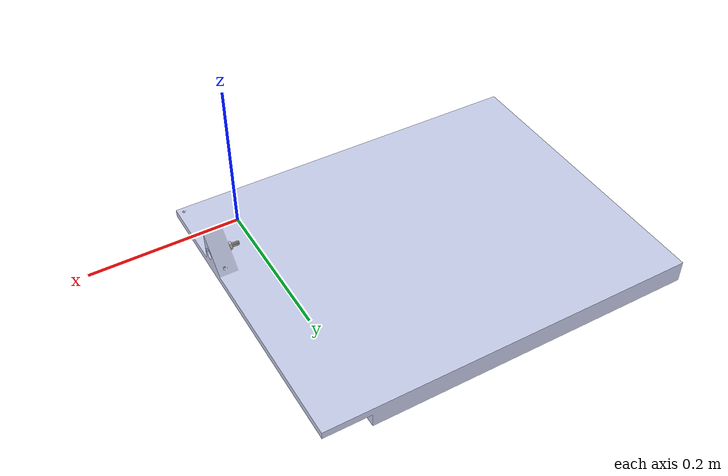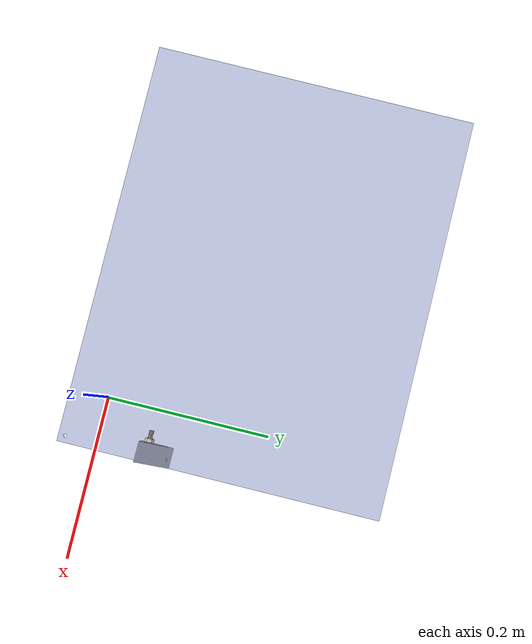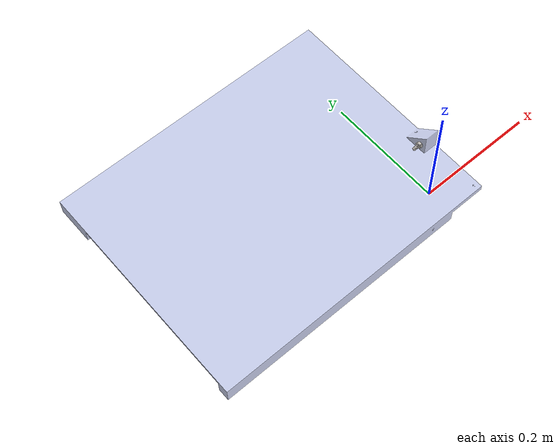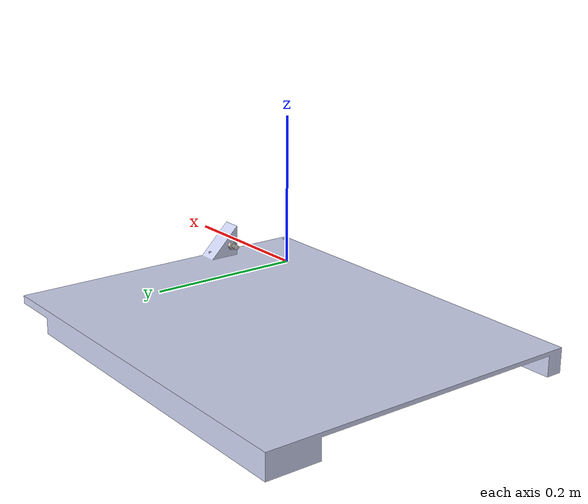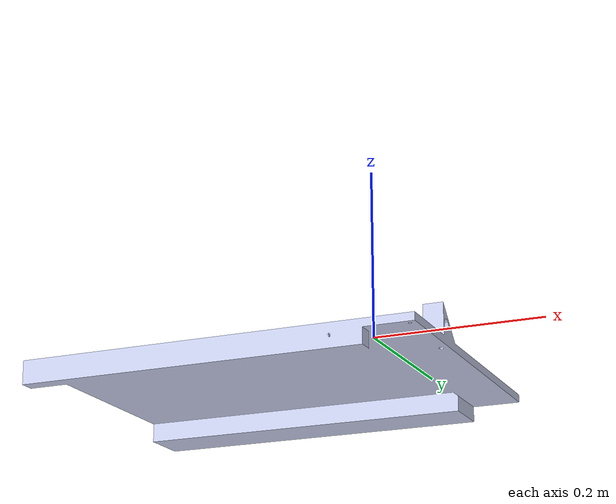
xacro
<?xml version="1.0" encoding="utf-8"?>
<robot
  name="hole_battery_describe">
  <link    name="hole_base_link"   xmlns:xacro="http://www.ros.org/wiki/xacro">

    <inertial>
      <origin
        xyz="-0.18358 0.00059075 -0.19041"
        rpy="0 0 0" />
      <mass
        value="2.0722" />
      <inertia
        ixx="0.040611"
        ixy="-0.00037803"
        ixz="-0.0028159"
        iyy="0.083995"
        iyz="-0.00066456"
        izz="0.043726" />
    </inertial>
    <visual>
      <origin
        xyz="0 0 0"
        rpy="0 0 0" />
      <geometry>
        <mesh
          filename="package://battery_pack_describe/meshes/hole_base_link.dae" />
      </geometry>
      <material
        name="">
        <color
          rgba="0.79216 0.81961 0.93333 1" />
      </material>
    </visual>
    <collision>
      <origin
        xyz="0 0 0"
        rpy="0 0 0" />
      <geometry>
        <box size="0.5 0.5 0.05" />
        <mesh
          filename="package://battery_pack_describe/meshes/hole_base_link.dae" />
      </geometry>
    </collision>
  </link>

  <gazebo reference="hole_base_link">
      <maxVel>0.01</maxVel>
      <kd>1</kd>
      <maxContacts>20</maxContacts>
      <mu2>50000</mu2>
      <selfCollide>0</selfCollide>
      <mu1>50000</mu1>
      <minDepth>0</minDepth>
      <kp>1000000000000.0</kp>
  </gazebo>

  <link
    name="hole_bolt_Link">
    <inertial>
      <origin
        xyz="-0.0222479735541268 -2.42669320749123E-09 1.13997719250469E-09"
        rpy="0 0 0" />
      <mass
        value="0.010043058879212" />
      <inertia
        ixx="8.16036465000949E-08"
        ixy="-2.67875420869616E-13"
        ixz="1.25078148415981E-13"
        iyy="1.22914699774063E-06"
        iyz="5.98228908164556E-14"
        izz="1.22914675774153E-06" />
    </inertial>
    <visual>
      <origin
        xyz="0 0 0"
        rpy="0 0 0" />
      <geometry>
        <mesh
          filename="package://battery_pack_describe/meshes/hole_bolt_Link.STL" />
      </geometry>
      <material
        name="">
        <color
          rgba="0.776470588235294 0.756862745098039 0.737254901960784 1" />
      </material>
    </visual>
    <collision>
      <origin
        xyz="0 0 0"
        rpy="0 0 0" />
      <geometry>
        <cylinder length="0.04" radius="0.02"/>

        <mesh
          filename="package://battery_pack_describe/meshes/hole_bolt_Link.STL" />
      </geometry>
    </collision>
  </link>
  <gazebo reference="hole_bolt_Link">
      <maxVel>0.01</maxVel>
      <kd>1</kd>
      <maxContacts>20</maxContacts>
      <mu2>50000</mu2>
      <selfCollide>0</selfCollide>
      <mu1>50000</mu1>
      <minDepth>0</minDepth>
      <kp>1000000000000.0</kp>
    <material>Gazebo/Grey </material>
  </gazebo>

  <joint
    name="hole_bolt_joint"
    type="continuous">
    <origin
      xyz="0.025323 0.063548 0.025"
      rpy="2.7498 0 3.1416" />
    <parent
      link="hole_base_link" />
    <child
      link="hole_bolt_Link" />
    <axis
      xyz="1 0 0" />
  </joint>
  <link
    name="hole_nut_Link">
    <inertial>
      <origin
        xyz="-8.23260334903431E-10 -3.46944695195361E-18 0.00260060243313041"
        rpy="0 0 0" />
      <mass
        value="0.00265736664598247" />
      <inertia
        ixx="2.79753045005072E-08"
        ixy="1.55317024420596E-23"
        ixz="-1.31796668969802E-18"
        iyy="2.79771327058771E-08"
        iyz="-4.83267733690945E-14"
        izz="4.46160415460722E-08" />
    </inertial>
    <visual>
      <origin
        xyz="0 0 0"
        rpy="0 0 0" />
      <geometry>
        <mesh
          filename="package://battery_pack_describe/meshes/hole_nut_Link.STL" />
      </geometry>
      <material
        name="">
        <color
          rgba="0.776470588235294 0.756862745098039 0.737254901960784 1" />
      </material>
    </visual>
    <collision>
      <origin
        xyz="0 0 0"
        rpy="0 0 0" />
      <geometry>
        <mesh
          filename="package://battery_pack_describe/meshes/hole_nut_Link.STL" />
      </geometry>
    </collision>
  </link>
      <gazebo reference="hole_nut_Link">
    <material>Gazebo/Gray</material>
  </gazebo>

  <joint
    name="hole_nut_joint"
    type="fixed">
    <origin
      xyz="0.035123 0.063548 0.025"
      rpy="-1.5708 0 -1.5708" />
    <parent
      link="hole_base_link" />
    <child
      link="hole_nut_Link" />
    <axis
      xyz="0 0 -1" />
  </joint>
</robot>
